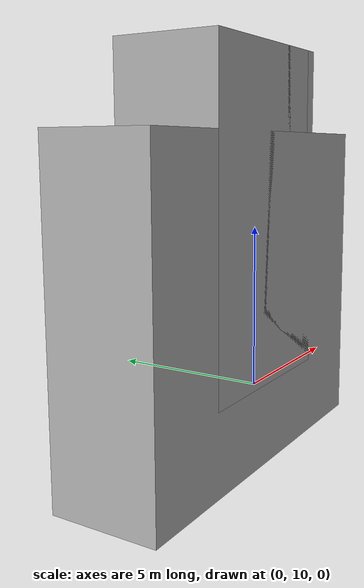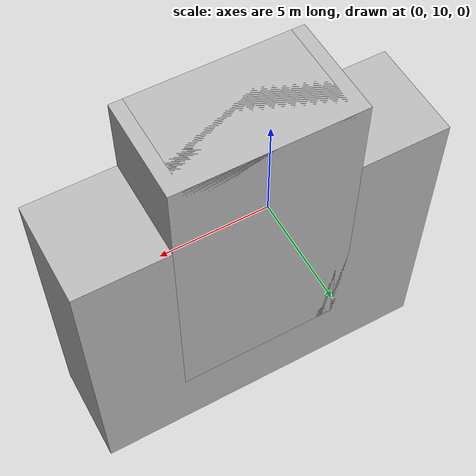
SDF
<?xml version='1.0'?>
<sdf version='1.6'>
		<model name="CValsTest">
			<self_collide>true</self_collide>
			<pose>0.0 0.0 0.0 0.0 0.0 0.0</pose>
			<!-- Start of parts of the pmodel CValsTest -->
				<!-- Start of declarations for part "CValsTest::p1" -->
					<!-- Start of parts of part "CValsTest::p1" -->
					<!-- End of parts of part "CValsTest::p1" -->

					<!-- Start of links of part "CValsTest::p1" -->
					<!-- link full name is CValsTest::p1::L1 -->
					<link name="1-L1">
							<pose>3.0 13.0 5.0 0.0 0.0 0.0</pose>
							<inertial>
								<pose>0.0 0.0 0.0 0.0 0.0 0.0</pose>
								<inertia>
									<ixx>1.0</ixx>
									<ixy>0.0</ixy>
									<ixz>0.0</ixz>
									<iyy>1.0</iyy>
									<iyz>0.0</iyz>
									<izz>1.0</izz>
								</inertia>
								<mass>1.0</mass>
							</inertial>
							<!-- body full name is CValsTest::p1::L1::B1 -->
							<collision name="1--B1">
								<laser_retro>0.0</laser_retro>
								<pose>0.0 0.0 0.0 0.0 0.0 0.0</pose>
								<geometry>
									<box>
										<size>6.0 4.0 12.0</size>
									</box>
								</geometry>
								<surface>
									<bounce>
										<restitution_coefficient>0.0</restitution_coefficient>
										<threshold>100000.0</threshold>
									</bounce>
									<friction>
										<ode>
											<mu>1.0</mu>
											<mu2>1.0</mu2>
											<fdir1>0.0 0.0 0.0</fdir1>
											<slip1>0.0</slip1>
											<slip2>0.0</slip2>
										</ode>
										<torsional>
											<coefficient>1.0</coefficient>
											<surface_radius>0.0</surface_radius>
										</torsional>
									</friction>
								</surface>
							</collision>
							<visual name="1--B1">
								<laser_retro>0.0</laser_retro>
								<pose>0.0 0.0 0.0 0.0 0.0 0.0</pose>
								<geometry>
									<box>
										<size>6.0 4.0 12.0</size>
									</box>
								</geometry>
								<surface>
									<bounce>
										<restitution_coefficient>0.0</restitution_coefficient>
										<threshold>100000.0</threshold>
									</bounce>
									<friction>
										<ode>
											<mu>1.0</mu>
											<mu2>1.0</mu2>
											<fdir1>0.0 0.0 0.0</fdir1>
											<slip1>0.0</slip1>
											<slip2>0.0</slip2>
										</ode>
										<torsional>
											<coefficient>1.0</coefficient>
											<surface_radius>0.0</surface_radius>
										</torsional>
									</friction>
								</surface>
							</visual>
					</link>
					<!-- End of links of part "CValsTest::p1" -->

					<!-- Start of joints of part "CValsTest::p1" -->
					<!-- End of joints of part "CValsTest::p1" -->

					<!-- Start of fixed connections of part "CValsTest::p1" -->

					<!-- End of fixed connections of part "CValsTest::p1" -->
				<!-- End of declarations for part "CValsTest::p1" -->
				<!-- Start of declarations for part "CValsTest::p2" -->
					<!-- Start of parts of part "CValsTest::p2" -->
					<!-- End of parts of part "CValsTest::p2" -->

					<!-- Start of links of part "CValsTest::p2" -->
					<!-- link full name is CValsTest::p2::L1 -->
					<link name="2-L1">
							<pose>3.0 13.0 5.0 0.0 0.0 0.0</pose>
							<inertial>
								<pose>0.0 0.0 0.0 0.0 0.0 0.0</pose>
								<inertia>
									<ixx>1.0</ixx>
									<ixy>0.0</ixy>
									<ixz>0.0</ixz>
									<iyy>1.0</iyy>
									<iyz>0.0</iyz>
									<izz>1.0</izz>
								</inertia>
								<mass>1.0</mass>
							</inertial>
							<!-- body full name is CValsTest::p2::L1::B1 -->
							<collision name="2--B1">
								<laser_retro>0.0</laser_retro>
								<pose>0.0 0.0 0.0 0.0 0.0 0.0</pose>
								<geometry>
									<box>
										<size>7.0 4.0 12.0</size>
									</box>
								</geometry>
								<surface>
									<bounce>
										<restitution_coefficient>0.0</restitution_coefficient>
										<threshold>100000.0</threshold>
									</bounce>
									<friction>
										<ode>
											<mu>1.0</mu>
											<mu2>1.0</mu2>
											<fdir1>0.0 0.0 0.0</fdir1>
											<slip1>0.0</slip1>
											<slip2>0.0</slip2>
										</ode>
										<torsional>
											<coefficient>1.0</coefficient>
											<surface_radius>0.0</surface_radius>
										</torsional>
									</friction>
								</surface>
							</collision>
							<visual name="2--B1">
								<laser_retro>0.0</laser_retro>
								<pose>0.0 0.0 0.0 0.0 0.0 0.0</pose>
								<geometry>
									<box>
										<size>7.0 4.0 12.0</size>
									</box>
								</geometry>
								<surface>
									<bounce>
										<restitution_coefficient>0.0</restitution_coefficient>
										<threshold>100000.0</threshold>
									</bounce>
									<friction>
										<ode>
											<mu>1.0</mu>
											<mu2>1.0</mu2>
											<fdir1>0.0 0.0 0.0</fdir1>
											<slip1>0.0</slip1>
											<slip2>0.0</slip2>
										</ode>
										<torsional>
											<coefficient>1.0</coefficient>
											<surface_radius>0.0</surface_radius>
										</torsional>
									</friction>
								</surface>
							</visual>
					</link>
					<!-- End of links of part "CValsTest::p2" -->

					<!-- Start of joints of part "CValsTest::p2" -->
					<!-- End of joints of part "CValsTest::p2" -->

					<!-- Start of fixed connections of part "CValsTest::p2" -->

					<!-- End of fixed connections of part "CValsTest::p2" -->
				<!-- End of declarations for part "CValsTest::p2" -->
			<!-- End of parts of the pmodel CValsTest -->

			<!-- Start of links of the pmodel CValsTest -->
			<!-- link full name is CValsTest::L1 -->
			<link name="3-L1">
					<pose>3.0 13.0 2.0 0.0 0.0 0.0</pose>
					<inertial>
						<pose>0.0 0.0 0.0 0.0 0.0 0.0</pose>
						<inertia>
							<ixx>1.0</ixx>
							<ixy>0.0</ixy>
							<ixz>0.0</ixz>
							<iyy>1.0</iyy>
							<iyz>0.0</iyz>
							<izz>1.0</izz>
						</inertia>
						<mass>1.0</mass>
					</inertial>
					<!-- body full name is CValsTest::L1::B1 -->
					<collision name="3--B1">
						<laser_retro>0.0</laser_retro>
						<pose>0.0 0.0 0.0 0.0 0.0 0.0</pose>
						<geometry>
							<box>
								<size>14.0 4.0 12.0</size>
							</box>
						</geometry>
						<surface>
							<bounce>
								<restitution_coefficient>0.0</restitution_coefficient>
								<threshold>100000.0</threshold>
							</bounce>
							<friction>
								<ode>
									<mu>1.0</mu>
									<mu2>1.0</mu2>
									<fdir1>0.0 0.0 0.0</fdir1>
									<slip1>0.0</slip1>
									<slip2>0.0</slip2>
								</ode>
								<torsional>
									<coefficient>1.0</coefficient>
									<surface_radius>0.0</surface_radius>
								</torsional>
							</friction>
						</surface>
					</collision>
					<visual name="3--B1">
						<laser_retro>0.0</laser_retro>
						<pose>0.0 0.0 0.0 0.0 0.0 0.0</pose>
						<geometry>
							<box>
								<size>14.0 4.0 12.0</size>
							</box>
						</geometry>
						<surface>
							<bounce>
								<restitution_coefficient>0.0</restitution_coefficient>
								<threshold>100000.0</threshold>
							</bounce>
							<friction>
								<ode>
									<mu>1.0</mu>
									<mu2>1.0</mu2>
									<fdir1>0.0 0.0 0.0</fdir1>
									<slip1>0.0</slip1>
									<slip2>0.0</slip2>
								</ode>
								<torsional>
									<coefficient>1.0</coefficient>
									<surface_radius>0.0</surface_radius>
								</torsional>
							</friction>
						</surface>
					</visual>
					<!-- WARNING: The SDF generator relies on annotations of the sensor MyIMU1 to specify aspects of the
					sensor that are accounted for in the equations. -->
					<!-- sensor simple name is MyIMU1 -->
					<sensor name="MyIMU1" type="imu">
						<pose>0.0 0.0 0.0 -0.0 1.57079632679 0.0</pose>
						<visualize>true</visualize>
						<update_rate>8.0</update_rate>
					</sensor>
					<!-- WARNING: The SDF generator relies on annotations of the sensor MyIMU2 to specify aspects of the
					sensor that are accounted for in the equations. -->
					<!-- sensor simple name is MyIMU2 -->
					<sensor name="MyIMU2" type="imu">
						<pose>0.0 0.0 0.0 -0.0 1.57079632679 0.0</pose>
						<visualize>true</visualize>
						<update_rate>16.0</update_rate>
					</sensor>
					<!-- WARNING: The SDF generator relies on annotations of the sensor MyIMU3 to specify aspects of the
					sensor that are accounted for in the equations. -->
					<!-- sensor simple name is MyIMU3 -->
					<sensor name="MyIMU3" type="imu">
						<pose>0.0 0.0 0.0 -0.0 1.57079632679 0.0</pose>
						<visualize>true</visualize>
						<update_rate>13.0</update_rate>
					</sensor>
					<!-- WARNING: The SDF generator relies on annotations of the sensor MyIMU4 to specify aspects of the
					sensor that are accounted for in the equations. -->
					<!-- sensor simple name is MyIMU4 -->
					<sensor name="MyIMU4" type="imu">
						<pose>0.0 0.0 0.0 -0.0 1.57079632679 0.0</pose>
						<visualize>true</visualize>
						<update_rate>14.0</update_rate>
					</sensor>
					<!-- WARNING: The SDF generator relies on annotations of the sensor MyIMU5 to specify aspects of the
					sensor that are accounted for in the equations. -->
					<!-- sensor simple name is MyIMU5 -->
					<sensor name="MyIMU5" type="imu">
						<pose>0.0 0.0 0.0 -0.0 1.57079632679 0.0</pose>
						<visualize>true</visualize>
						<update_rate>20.0</update_rate>
					</sensor>
			</link>
			<!-- link full name is CValsTest::L2 -->
			<link name="4-L2">
					<pose>3.0 13.0 2.0 0.0 0.0 0.0</pose>
					<inertial>
						<pose>0.0 0.0 0.0 0.0 0.0 0.0</pose>
						<inertia>
							<ixx>1.0</ixx>
							<ixy>0.0</ixy>
							<ixz>0.0</ixz>
							<iyy>1.0</iyy>
							<iyz>0.0</iyz>
							<izz>1.0</izz>
						</inertia>
						<mass>1.0</mass>
					</inertial>
					<!-- body full name is CValsTest::L2::B2 -->
					<collision name="4--B2">
						<laser_retro>0.0</laser_retro>
						<pose>0.0 0.0 0.0 0.0 0.0 0.0</pose>
						<geometry>
							<box>
								<size>14.0 4.0 12.0</size>
							</box>
						</geometry>
						<surface>
							<bounce>
								<restitution_coefficient>0.0</restitution_coefficient>
								<threshold>100000.0</threshold>
							</bounce>
							<friction>
								<ode>
									<mu>1.0</mu>
									<mu2>1.0</mu2>
									<fdir1>0.0 0.0 0.0</fdir1>
									<slip1>0.0</slip1>
									<slip2>0.0</slip2>
								</ode>
								<torsional>
									<coefficient>1.0</coefficient>
									<surface_radius>0.0</surface_radius>
								</torsional>
							</friction>
						</surface>
					</collision>
					<visual name="4--B2">
						<laser_retro>0.0</laser_retro>
						<pose>0.0 0.0 0.0 0.0 0.0 0.0</pose>
						<geometry>
							<box>
								<size>14.0 4.0 12.0</size>
							</box>
						</geometry>
						<surface>
							<bounce>
								<restitution_coefficient>0.0</restitution_coefficient>
								<threshold>100000.0</threshold>
							</bounce>
							<friction>
								<ode>
									<mu>1.0</mu>
									<mu2>1.0</mu2>
									<fdir1>0.0 0.0 0.0</fdir1>
									<slip1>0.0</slip1>
									<slip2>0.0</slip2>
								</ode>
								<torsional>
									<coefficient>1.0</coefficient>
									<surface_radius>0.0</surface_radius>
								</torsional>
							</friction>
						</surface>
					</visual>
			</link>
			<!-- End of links of the pmodel CValsTest -->

			<!-- Start of joints of the pmodel CValsTest -->
			<!-- Full name of joint: CValsTest::L1::j1 from CValsTest::L1 to CValsTest::L2-->
			<joint name="5-j1" type="revolute">
				<pose>0.0 0.0 0.0 0.0 -0.0 0.0</pose>
				<parent>3-L1</parent>
				<child>4-L2</child>
				<!-- WARNING: The SDF generator relies on annotations of the joint 5-j1 to specify in SDF aspects of the joint that are
					 accounted for in the equations. -->
				<axis>
					<xyz>4.0 21 22</xyz>
				</axis>
			</joint>
			<!-- Full name of joint: CValsTest::L1::j2 from CValsTest::L1 to CValsTest::L2-->
			<joint name="6-j2" type="revolute">
				<pose>0.0 0.0 0.0 0.0 -0.0 0.0</pose>
				<parent>3-L1</parent>
				<child>4-L2</child>
				<!-- WARNING: The SDF generator relies on annotations of the joint 6-j2 to specify in SDF aspects of the joint that are
					 accounted for in the equations. -->
				<axis>
					<xyz>4.0 21 23</xyz>
				</axis>
			</joint>
			<!-- End of joints of the pmodel CValsTest -->

			<!-- Start of fixed connections of the pmodel CValsTest -->
			<!-- End of fixed connections of the pmodel CValsTest -->
		</model>
</sdf>
